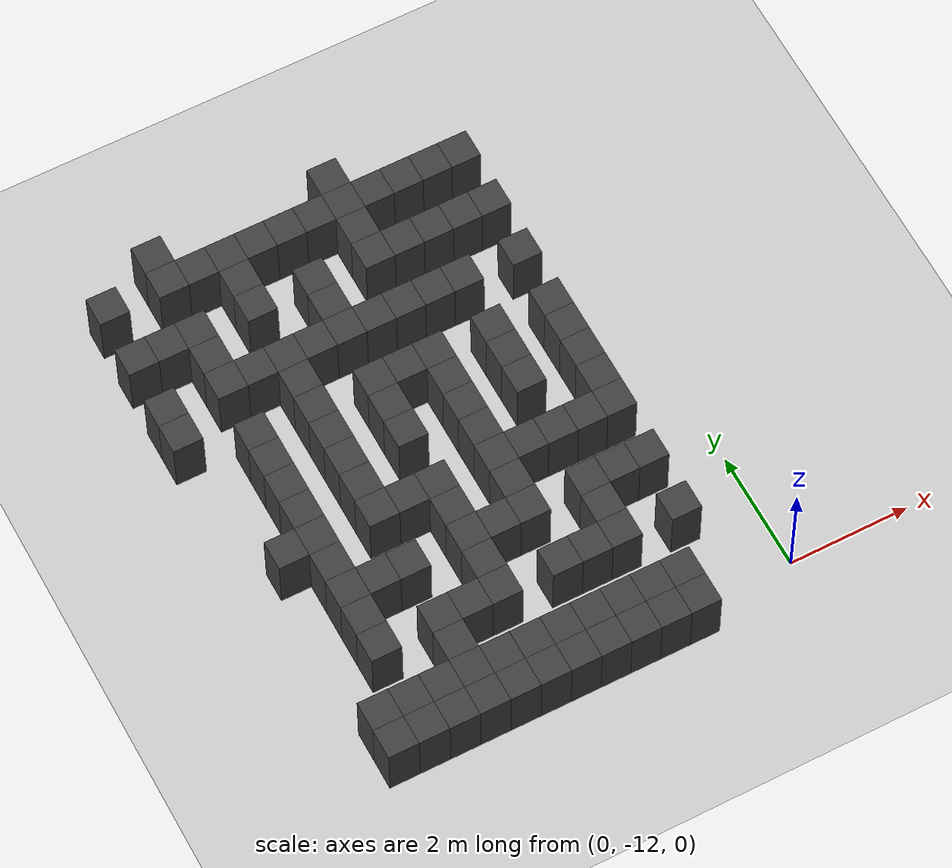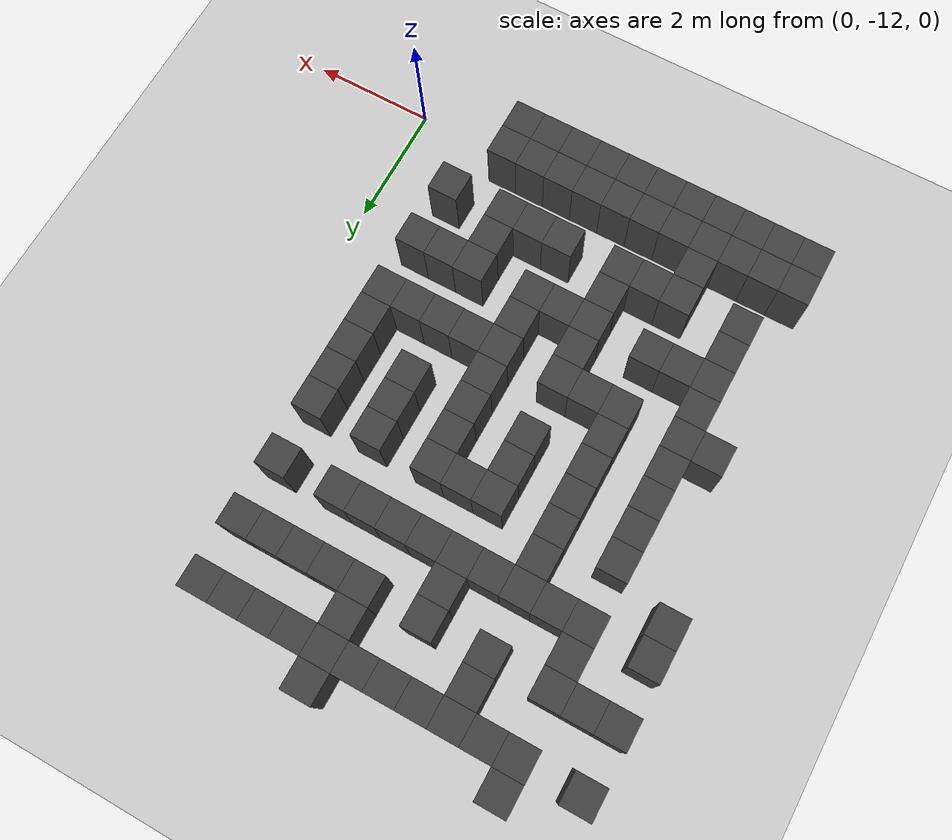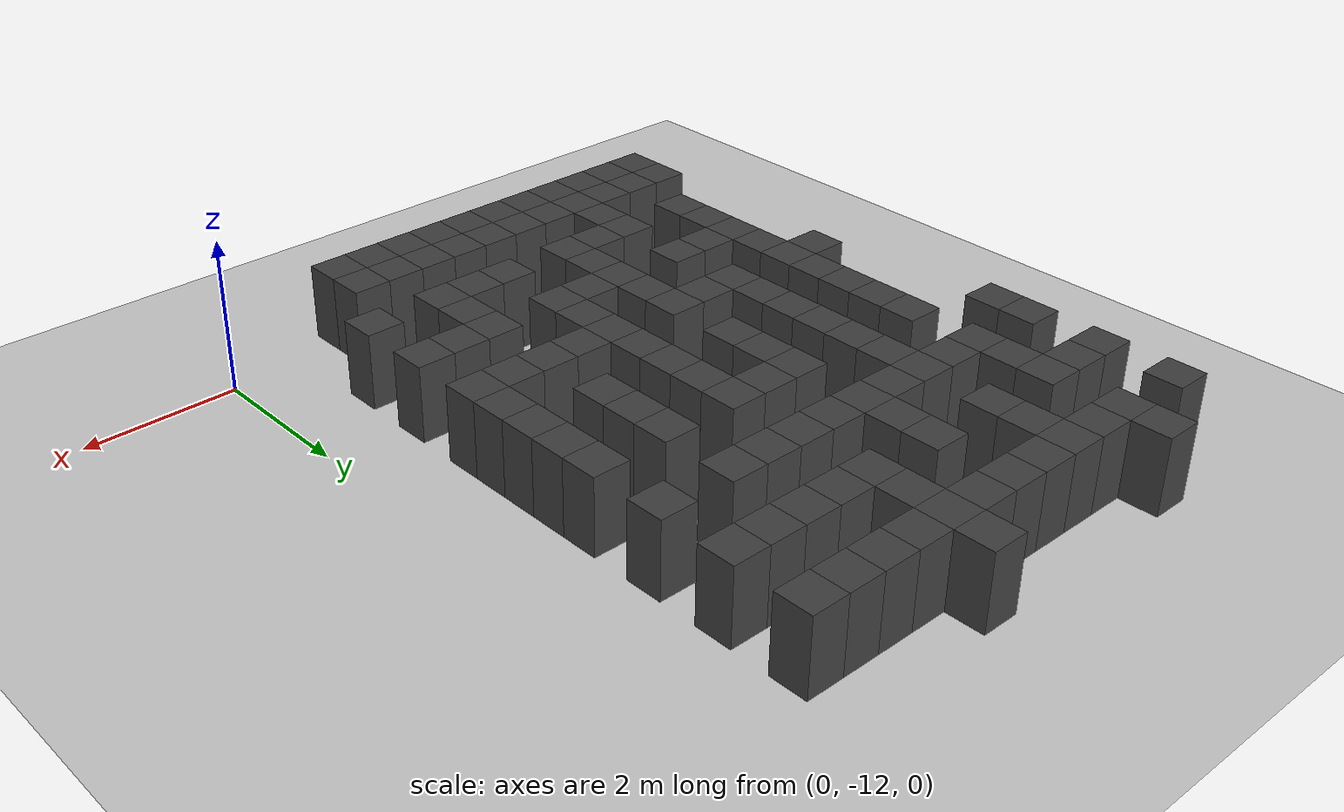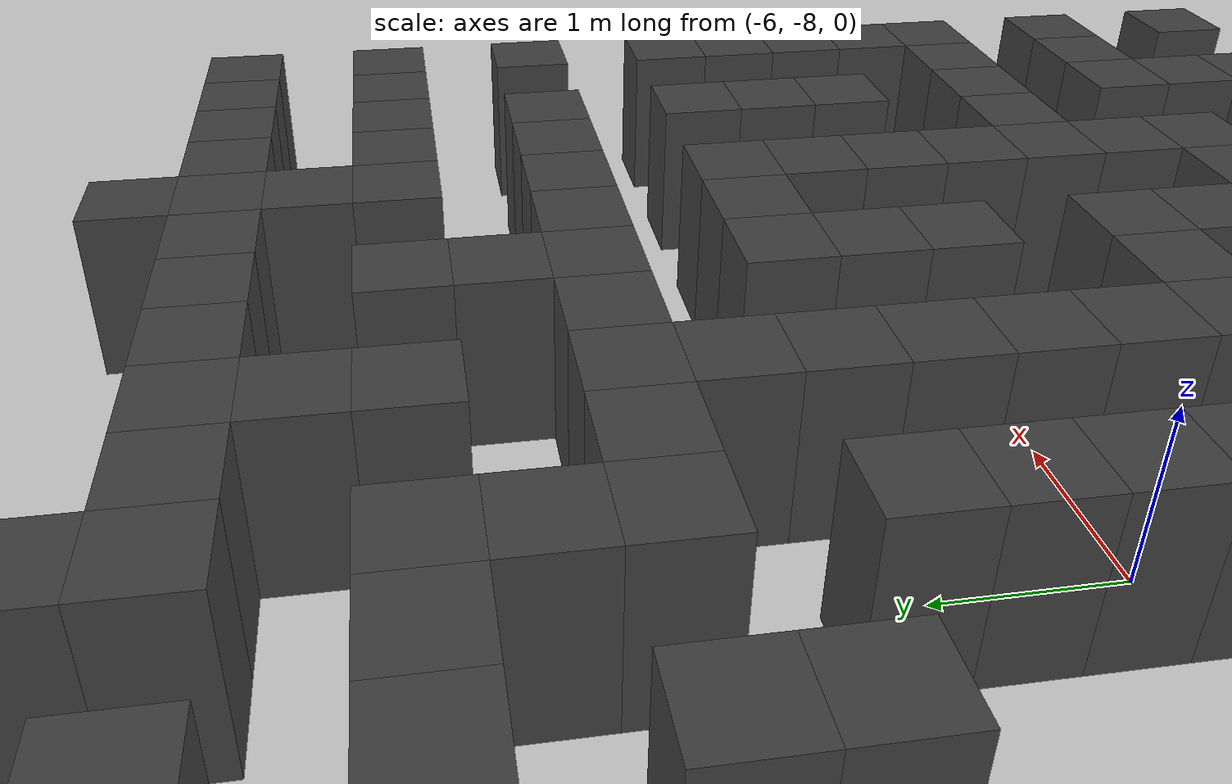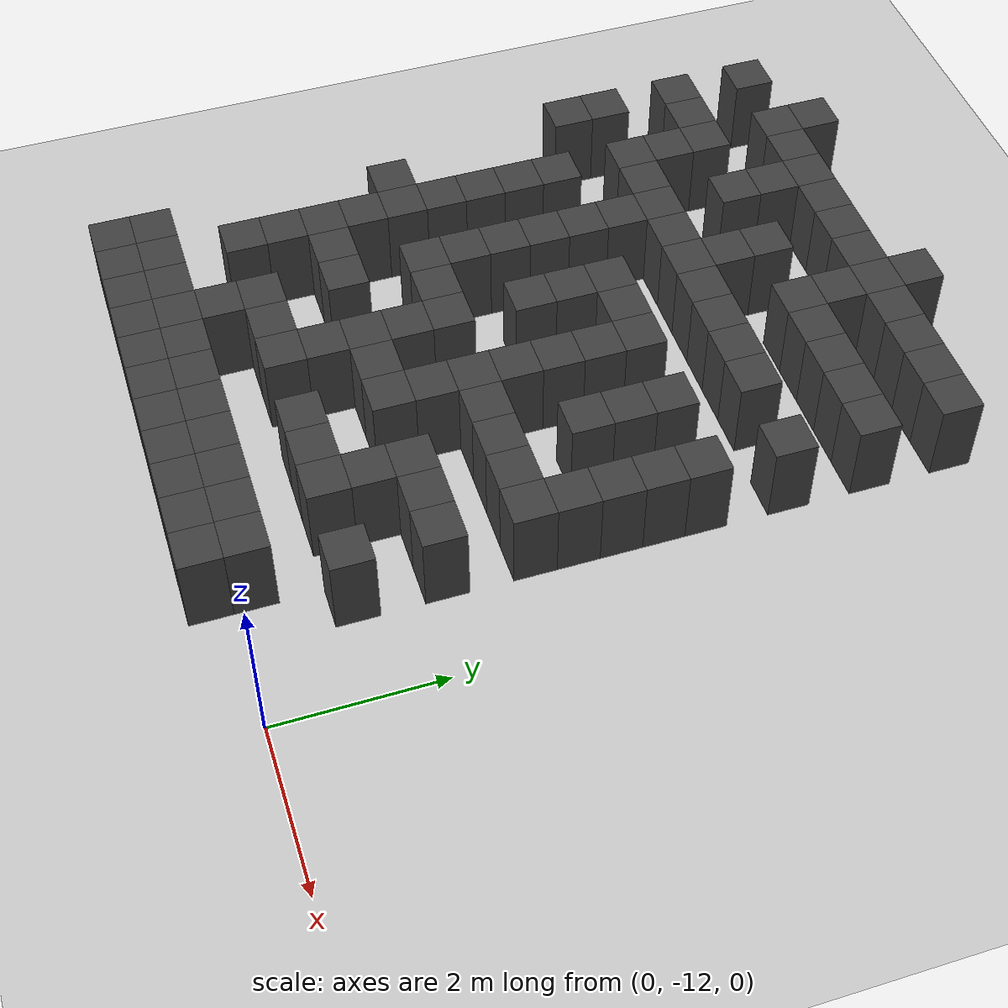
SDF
<sdf version="1.7">
 <world name="map_19217">
  <model name="ground_plane">
   <static>true</static>
   <link name="link">
    <collision name="collision">
     <geometry><plane><normal>0 0 1</normal><size>200 200</size></plane></geometry>
    </collision>
    <visual name="visual">
     <geometry><plane><normal>0 0 1</normal><size>200 200</size></plane></geometry>
     <material><ambient>0.8 0.8 0.8 1</ambient><diffuse>0.8 0.8 0.8 1</diffuse></material>
    </visual>
   </link>
  </model>
  <model name="maze_environment">
   <static>true</static>
   <link name="wall_811">
    <pose>-6.250 -3.250 0.500 0 0 0</pose>
    <collision name="col"><geometry><box><size>0.5 0.5 1.0</size></box></geometry></collision>
    <visual name="vis">
     <geometry><box><size>0.5 0.5 1.0</size></box></geometry>
     <material><ambient>0.15 0.15 0.15 1</ambient><diffuse>0.25 0.25 0.25 1</diffuse></material>
    </visual>
   </link>
   <link name="wall_812">
    <pose>-3.250 -3.250 0.500 0 0 0</pose>
    <collision name="col"><geometry><box><size>0.5 0.5 1.0</size></box></geometry></collision>
    <visual name="vis">
     <geometry><box><size>0.5 0.5 1.0</size></box></geometry>
     <material><ambient>0.15 0.15 0.15 1</ambient><diffuse>0.25 0.25 0.25 1</diffuse></material>
    </visual>
   </link>
   <link name="wall_827">
    <pose>-7.250 -3.750 0.500 0 0 0</pose>
    <collision name="col"><geometry><box><size>0.5 0.5 1.0</size></box></geometry></collision>
    <visual name="vis">
     <geometry><box><size>0.5 0.5 1.0</size></box></geometry>
     <material><ambient>0.15 0.15 0.15 1</ambient><diffuse>0.25 0.25 0.25 1</diffuse></material>
    </visual>
   </link>
   <link name="wall_828">
    <pose>-6.250 -3.750 0.500 0 0 0</pose>
    <collision name="col"><geometry><box><size>0.5 0.5 1.0</size></box></geometry></collision>
    <visual name="vis">
     <geometry><box><size>0.5 0.5 1.0</size></box></geometry>
     <material><ambient>0.15 0.15 0.15 1</ambient><diffuse>0.25 0.25 0.25 1</diffuse></material>
    </visual>
   </link>
   <link name="wall_829">
    <pose>-5.750 -3.750 0.500 0 0 0</pose>
    <collision name="col"><geometry><box><size>0.5 0.5 1.0</size></box></geometry></collision>
    <visual name="vis">
     <geometry><box><size>0.5 0.5 1.0</size></box></geometry>
     <material><ambient>0.15 0.15 0.15 1</ambient><diffuse>0.25 0.25 0.25 1</diffuse></material>
    </visual>
   </link>
   <link name="wall_830">
    <pose>-5.250 -3.750 0.500 0 0 0</pose>
    <collision name="col"><geometry><box><size>0.5 0.5 1.0</size></box></geometry></collision>
    <visual name="vis">
     <geometry><box><size>0.5 0.5 1.0</size></box></geometry>
     <material><ambient>0.15 0.15 0.15 1</ambient><diffuse>0.25 0.25 0.25 1</diffuse></material>
    </visual>
   </link>
   <link name="wall_831">
    <pose>-4.750 -3.750 0.500 0 0 0</pose>
    <collision name="col"><geometry><box><size>0.5 0.5 1.0</size></box></geometry></collision>
    <visual name="vis">
     <geometry><box><size>0.5 0.5 1.0</size></box></geometry>
     <material><ambient>0.15 0.15 0.15 1</ambient><diffuse>0.25 0.25 0.25 1</diffuse></material>
    </visual>
   </link>
   <link name="wall_832">
    <pose>-4.250 -3.750 0.500 0 0 0</pose>
    <collision name="col"><geometry><box><size>0.5 0.5 1.0</size></box></geometry></collision>
    <visual name="vis">
     <geometry><box><size>0.5 0.5 1.0</size></box></geometry>
     <material><ambient>0.15 0.15 0.15 1</ambient><diffuse>0.25 0.25 0.25 1</diffuse></material>
    </visual>
   </link>
   <link name="wall_833">
    <pose>-3.750 -3.750 0.500 0 0 0</pose>
    <collision name="col"><geometry><box><size>0.5 0.5 1.0</size></box></geometry></collision>
    <visual name="vis">
     <geometry><box><size>0.5 0.5 1.0</size></box></geometry>
     <material><ambient>0.15 0.15 0.15 1</ambient><diffuse>0.25 0.25 0.25 1</diffuse></material>
    </visual>
   </link>
   <link name="wall_834">
    <pose>-3.250 -3.750 0.500 0 0 0</pose>
    <collision name="col"><geometry><box><size>0.5 0.5 1.0</size></box></geometry></collision>
    <visual name="vis">
     <geometry><box><size>0.5 0.5 1.0</size></box></geometry>
     <material><ambient>0.15 0.15 0.15 1</ambient><diffuse>0.25 0.25 0.25 1</diffuse></material>
    </visual>
   </link>
   <link name="wall_835">
    <pose>-2.750 -3.750 0.500 0 0 0</pose>
    <collision name="col"><geometry><box><size>0.5 0.5 1.0</size></box></geometry></collision>
    <visual name="vis">
     <geometry><box><size>0.5 0.5 1.0</size></box></geometry>
     <material><ambient>0.15 0.15 0.15 1</ambient><diffuse>0.25 0.25 0.25 1</diffuse></material>
    </visual>
   </link>
   <link name="wall_836">
    <pose>-2.250 -3.750 0.500 0 0 0</pose>
    <collision name="col"><geometry><box><size>0.5 0.5 1.0</size></box></geometry></collision>
    <visual name="vis">
     <geometry><box><size>0.5 0.5 1.0</size></box></geometry>
     <material><ambient>0.15 0.15 0.15 1</ambient><diffuse>0.25 0.25 0.25 1</diffuse></material>
    </visual>
   </link>
   <link name="wall_837">
    <pose>-1.750 -3.750 0.500 0 0 0</pose>
    <collision name="col"><geometry><box><size>0.5 0.5 1.0</size></box></geometry></collision>
    <visual name="vis">
     <geometry><box><size>0.5 0.5 1.0</size></box></geometry>
     <material><ambient>0.15 0.15 0.15 1</ambient><diffuse>0.25 0.25 0.25 1</diffuse></material>
    </visual>
   </link>
   <link name="wall_838">
    <pose>-1.250 -3.750 0.500 0 0 0</pose>
    <collision name="col"><geometry><box><size>0.5 0.5 1.0</size></box></geometry></collision>
    <visual name="vis">
     <geometry><box><size>0.5 0.5 1.0</size></box></geometry>
     <material><ambient>0.15 0.15 0.15 1</ambient><diffuse>0.25 0.25 0.25 1</diffuse></material>
    </visual>
   </link>
   <link name="wall_861">
    <pose>-5.250 -4.250 0.500 0 0 0</pose>
    <collision name="col"><geometry><box><size>0.5 0.5 1.0</size></box></geometry></collision>
    <visual name="vis">
     <geometry><box><size>0.5 0.5 1.0</size></box></geometry>
     <material><ambient>0.15 0.15 0.15 1</ambient><diffuse>0.25 0.25 0.25 1</diffuse></material>
    </visual>
   </link>
   <link name="wall_862">
    <pose>-3.250 -4.250 0.500 0 0 0</pose>
    <collision name="col"><geometry><box><size>0.5 0.5 1.0</size></box></geometry></collision>
    <visual name="vis">
     <geometry><box><size>0.5 0.5 1.0</size></box></geometry>
     <material><ambient>0.15 0.15 0.15 1</ambient><diffuse>0.25 0.25 0.25 1</diffuse></material>
    </visual>
   </link>
   <link name="wall_878">
    <pose>-7.250 -4.750 0.500 0 0 0</pose>
    <collision name="col"><geometry><box><size>0.5 0.5 1.0</size></box></geometry></collision>
    <visual name="vis">
     <geometry><box><size>0.5 0.5 1.0</size></box></geometry>
     <material><ambient>0.15 0.15 0.15 1</ambient><diffuse>0.25 0.25 0.25 1</diffuse></material>
    </visual>
   </link>
   <link name="wall_879">
    <pose>-6.750 -4.750 0.500 0 0 0</pose>
    <collision name="col"><geometry><box><size>0.5 0.5 1.0</size></box></geometry></collision>
    <visual name="vis">
     <geometry><box><size>0.5 0.5 1.0</size></box></geometry>
     <material><ambient>0.15 0.15 0.15 1</ambient><diffuse>0.25 0.25 0.25 1</diffuse></material>
    </visual>
   </link>
   <link name="wall_880">
    <pose>-6.250 -4.750 0.500 0 0 0</pose>
    <collision name="col"><geometry><box><size>0.5 0.5 1.0</size></box></geometry></collision>
    <visual name="vis">
     <geometry><box><size>0.5 0.5 1.0</size></box></geometry>
     <material><ambient>0.15 0.15 0.15 1</ambient><diffuse>0.25 0.25 0.25 1</diffuse></material>
    </visual>
   </link>
   <link name="wall_881">
    <pose>-5.250 -4.750 0.500 0 0 0</pose>
    <collision name="col"><geometry><box><size>0.5 0.5 1.0</size></box></geometry></collision>
    <visual name="vis">
     <geometry><box><size>0.5 0.5 1.0</size></box></geometry>
     <material><ambient>0.15 0.15 0.15 1</ambient><diffuse>0.25 0.25 0.25 1</diffuse></material>
    </visual>
   </link>
   <link name="wall_882">
    <pose>-4.250 -4.750 0.500 0 0 0</pose>
    <collision name="col"><geometry><box><size>0.5 0.5 1.0</size></box></geometry></collision>
    <visual name="vis">
     <geometry><box><size>0.5 0.5 1.0</size></box></geometry>
     <material><ambient>0.15 0.15 0.15 1</ambient><diffuse>0.25 0.25 0.25 1</diffuse></material>
    </visual>
   </link>
   <link name="wall_883">
    <pose>-3.250 -4.750 0.500 0 0 0</pose>
    <collision name="col"><geometry><box><size>0.5 0.5 1.0</size></box></geometry></collision>
    <visual name="vis">
     <geometry><box><size>0.5 0.5 1.0</size></box></geometry>
     <material><ambient>0.15 0.15 0.15 1</ambient><diffuse>0.25 0.25 0.25 1</diffuse></material>
    </visual>
   </link>
   <link name="wall_884">
    <pose>-2.750 -4.750 0.500 0 0 0</pose>
    <collision name="col"><geometry><box><size>0.5 0.5 1.0</size></box></geometry></collision>
    <visual name="vis">
     <geometry><box><size>0.5 0.5 1.0</size></box></geometry>
     <material><ambient>0.15 0.15 0.15 1</ambient><diffuse>0.25 0.25 0.25 1</diffuse></material>
    </visual>
   </link>
   <link name="wall_885">
    <pose>-2.250 -4.750 0.500 0 0 0</pose>
    <collision name="col"><geometry><box><size>0.5 0.5 1.0</size></box></geometry></collision>
    <visual name="vis">
     <geometry><box><size>0.5 0.5 1.0</size></box></geometry>
     <material><ambient>0.15 0.15 0.15 1</ambient><diffuse>0.25 0.25 0.25 1</diffuse></material>
    </visual>
   </link>
   <link name="wall_886">
    <pose>-1.750 -4.750 0.500 0 0 0</pose>
    <collision name="col"><geometry><box><size>0.5 0.5 1.0</size></box></geometry></collision>
    <visual name="vis">
     <geometry><box><size>0.5 0.5 1.0</size></box></geometry>
     <material><ambient>0.15 0.15 0.15 1</ambient><diffuse>0.25 0.25 0.25 1</diffuse></material>
    </visual>
   </link>
   <link name="wall_887">
    <pose>-1.250 -4.750 0.500 0 0 0</pose>
    <collision name="col"><geometry><box><size>0.5 0.5 1.0</size></box></geometry></collision>
    <visual name="vis">
     <geometry><box><size>0.5 0.5 1.0</size></box></geometry>
     <material><ambient>0.15 0.15 0.15 1</ambient><diffuse>0.25 0.25 0.25 1</diffuse></material>
    </visual>
   </link>
   <link name="wall_913">
    <pose>-6.250 -5.250 0.500 0 0 0</pose>
    <collision name="col"><geometry><box><size>0.5 0.5 1.0</size></box></geometry></collision>
    <visual name="vis">
     <geometry><box><size>0.5 0.5 1.0</size></box></geometry>
     <material><ambient>0.15 0.15 0.15 1</ambient><diffuse>0.25 0.25 0.25 1</diffuse></material>
    </visual>
   </link>
   <link name="wall_914">
    <pose>-4.250 -5.250 0.500 0 0 0</pose>
    <collision name="col"><geometry><box><size>0.5 0.5 1.0</size></box></geometry></collision>
    <visual name="vis">
     <geometry><box><size>0.5 0.5 1.0</size></box></geometry>
     <material><ambient>0.15 0.15 0.15 1</ambient><diffuse>0.25 0.25 0.25 1</diffuse></material>
    </visual>
   </link>
   <link name="wall_929">
    <pose>-7.250 -5.750 0.500 0 0 0</pose>
    <collision name="col"><geometry><box><size>0.5 0.5 1.0</size></box></geometry></collision>
    <visual name="vis">
     <geometry><box><size>0.5 0.5 1.0</size></box></geometry>
     <material><ambient>0.15 0.15 0.15 1</ambient><diffuse>0.25 0.25 0.25 1</diffuse></material>
    </visual>
   </link>
   <link name="wall_930">
    <pose>-6.250 -5.750 0.500 0 0 0</pose>
    <collision name="col"><geometry><box><size>0.5 0.5 1.0</size></box></geometry></collision>
    <visual name="vis">
     <geometry><box><size>0.5 0.5 1.0</size></box></geometry>
     <material><ambient>0.15 0.15 0.15 1</ambient><diffuse>0.25 0.25 0.25 1</diffuse></material>
    </visual>
   </link>
   <link name="wall_931">
    <pose>-5.750 -5.750 0.500 0 0 0</pose>
    <collision name="col"><geometry><box><size>0.5 0.5 1.0</size></box></geometry></collision>
    <visual name="vis">
     <geometry><box><size>0.5 0.5 1.0</size></box></geometry>
     <material><ambient>0.15 0.15 0.15 1</ambient><diffuse>0.25 0.25 0.25 1</diffuse></material>
    </visual>
   </link>
   <link name="wall_932">
    <pose>-5.250 -5.750 0.500 0 0 0</pose>
    <collision name="col"><geometry><box><size>0.5 0.5 1.0</size></box></geometry></collision>
    <visual name="vis">
     <geometry><box><size>0.5 0.5 1.0</size></box></geometry>
     <material><ambient>0.15 0.15 0.15 1</ambient><diffuse>0.25 0.25 0.25 1</diffuse></material>
    </visual>
   </link>
   <link name="wall_933">
    <pose>-4.750 -5.750 0.500 0 0 0</pose>
    <collision name="col"><geometry><box><size>0.5 0.5 1.0</size></box></geometry></collision>
    <visual name="vis">
     <geometry><box><size>0.5 0.5 1.0</size></box></geometry>
     <material><ambient>0.15 0.15 0.15 1</ambient><diffuse>0.25 0.25 0.25 1</diffuse></material>
    </visual>
   </link>
   <link name="wall_934">
    <pose>-4.250 -5.750 0.500 0 0 0</pose>
    <collision name="col"><geometry><box><size>0.5 0.5 1.0</size></box></geometry></collision>
    <visual name="vis">
     <geometry><box><size>0.5 0.5 1.0</size></box></geometry>
     <material><ambient>0.15 0.15 0.15 1</ambient><diffuse>0.25 0.25 0.25 1</diffuse></material>
    </visual>
   </link>
   <link name="wall_935">
    <pose>-3.750 -5.750 0.500 0 0 0</pose>
    <collision name="col"><geometry><box><size>0.5 0.5 1.0</size></box></geometry></collision>
    <visual name="vis">
     <geometry><box><size>0.5 0.5 1.0</size></box></geometry>
     <material><ambient>0.15 0.15 0.15 1</ambient><diffuse>0.25 0.25 0.25 1</diffuse></material>
    </visual>
   </link>
   <link name="wall_936">
    <pose>-3.250 -5.750 0.500 0 0 0</pose>
    <collision name="col"><geometry><box><size>0.5 0.5 1.0</size></box></geometry></collision>
    <visual name="vis">
     <geometry><box><size>0.5 0.5 1.0</size></box></geometry>
     <material><ambient>0.15 0.15 0.15 1</ambient><diffuse>0.25 0.25 0.25 1</diffuse></material>
    </visual>
   </link>
   <link name="wall_937">
    <pose>-2.750 -5.750 0.500 0 0 0</pose>
    <collision name="col"><geometry><box><size>0.5 0.5 1.0</size></box></geometry></collision>
    <visual name="vis">
     <geometry><box><size>0.5 0.5 1.0</size></box></geometry>
     <material><ambient>0.15 0.15 0.15 1</ambient><diffuse>0.25 0.25 0.25 1</diffuse></material>
    </visual>
   </link>
   <link name="wall_938">
    <pose>-2.250 -5.750 0.500 0 0 0</pose>
    <collision name="col"><geometry><box><size>0.5 0.5 1.0</size></box></geometry></collision>
    <visual name="vis">
     <geometry><box><size>0.5 0.5 1.0</size></box></geometry>
     <material><ambient>0.15 0.15 0.15 1</ambient><diffuse>0.25 0.25 0.25 1</diffuse></material>
    </visual>
   </link>
   <link name="wall_939">
    <pose>-1.250 -5.750 0.500 0 0 0</pose>
    <collision name="col"><geometry><box><size>0.5 0.5 1.0</size></box></geometry></collision>
    <visual name="vis">
     <geometry><box><size>0.5 0.5 1.0</size></box></geometry>
     <material><ambient>0.15 0.15 0.15 1</ambient><diffuse>0.25 0.25 0.25 1</diffuse></material>
    </visual>
   </link>
   <link name="wall_964">
    <pose>-7.250 -6.250 0.500 0 0 0</pose>
    <collision name="col"><geometry><box><size>0.5 0.5 1.0</size></box></geometry></collision>
    <visual name="vis">
     <geometry><box><size>0.5 0.5 1.0</size></box></geometry>
     <material><ambient>0.15 0.15 0.15 1</ambient><diffuse>0.25 0.25 0.25 1</diffuse></material>
    </visual>
   </link>
   <link name="wall_965">
    <pose>-5.250 -6.250 0.500 0 0 0</pose>
    <collision name="col"><geometry><box><size>0.5 0.5 1.0</size></box></geometry></collision>
    <visual name="vis">
     <geometry><box><size>0.5 0.5 1.0</size></box></geometry>
     <material><ambient>0.15 0.15 0.15 1</ambient><diffuse>0.25 0.25 0.25 1</diffuse></material>
    </visual>
   </link>
   <link name="wall_980">
    <pose>-6.250 -6.750 0.500 0 0 0</pose>
    <collision name="col"><geometry><box><size>0.5 0.5 1.0</size></box></geometry></collision>
    <visual name="vis">
     <geometry><box><size>0.5 0.5 1.0</size></box></geometry>
     <material><ambient>0.15 0.15 0.15 1</ambient><diffuse>0.25 0.25 0.25 1</diffuse></material>
    </visual>
   </link>
   <link name="wall_981">
    <pose>-5.250 -6.750 0.500 0 0 0</pose>
    <collision name="col"><geometry><box><size>0.5 0.5 1.0</size></box></geometry></collision>
    <visual name="vis">
     <geometry><box><size>0.5 0.5 1.0</size></box></geometry>
     <material><ambient>0.15 0.15 0.15 1</ambient><diffuse>0.25 0.25 0.25 1</diffuse></material>
    </visual>
   </link>
   <link name="wall_982">
    <pose>-4.250 -6.750 0.500 0 0 0</pose>
    <collision name="col"><geometry><box><size>0.5 0.5 1.0</size></box></geometry></collision>
    <visual name="vis">
     <geometry><box><size>0.5 0.5 1.0</size></box></geometry>
     <material><ambient>0.15 0.15 0.15 1</ambient><diffuse>0.25 0.25 0.25 1</diffuse></material>
    </visual>
   </link>
   <link name="wall_983">
    <pose>-3.750 -6.750 0.500 0 0 0</pose>
    <collision name="col"><geometry><box><size>0.5 0.5 1.0</size></box></geometry></collision>
    <visual name="vis">
     <geometry><box><size>0.5 0.5 1.0</size></box></geometry>
     <material><ambient>0.15 0.15 0.15 1</ambient><diffuse>0.25 0.25 0.25 1</diffuse></material>
    </visual>
   </link>
   <link name="wall_984">
    <pose>-3.250 -6.750 0.500 0 0 0</pose>
    <collision name="col"><geometry><box><size>0.5 0.5 1.0</size></box></geometry></collision>
    <visual name="vis">
     <geometry><box><size>0.5 0.5 1.0</size></box></geometry>
     <material><ambient>0.15 0.15 0.15 1</ambient><diffuse>0.25 0.25 0.25 1</diffuse></material>
    </visual>
   </link>
   <link name="wall_985">
    <pose>-2.250 -6.750 0.500 0 0 0</pose>
    <collision name="col"><geometry><box><size>0.5 0.5 1.0</size></box></geometry></collision>
    <visual name="vis">
     <geometry><box><size>0.5 0.5 1.0</size></box></geometry>
     <material><ambient>0.15 0.15 0.15 1</ambient><diffuse>0.25 0.25 0.25 1</diffuse></material>
    </visual>
   </link>
   <link name="wall_986">
    <pose>-1.250 -6.750 0.500 0 0 0</pose>
    <collision name="col"><geometry><box><size>0.5 0.5 1.0</size></box></geometry></collision>
    <visual name="vis">
     <geometry><box><size>0.5 0.5 1.0</size></box></geometry>
     <material><ambient>0.15 0.15 0.15 1</ambient><diffuse>0.25 0.25 0.25 1</diffuse></material>
    </visual>
   </link>
   <link name="wall_1010">
    <pose>-6.250 -7.250 0.500 0 0 0</pose>
    <collision name="col"><geometry><box><size>0.5 0.5 1.0</size></box></geometry></collision>
    <visual name="vis">
     <geometry><box><size>0.5 0.5 1.0</size></box></geometry>
     <material><ambient>0.15 0.15 0.15 1</ambient><diffuse>0.25 0.25 0.25 1</diffuse></material>
    </visual>
   </link>
   <link name="wall_1011">
    <pose>-5.250 -7.250 0.500 0 0 0</pose>
    <collision name="col"><geometry><box><size>0.5 0.5 1.0</size></box></geometry></collision>
    <visual name="vis">
     <geometry><box><size>0.5 0.5 1.0</size></box></geometry>
     <material><ambient>0.15 0.15 0.15 1</ambient><diffuse>0.25 0.25 0.25 1</diffuse></material>
    </visual>
   </link>
   <link name="wall_1012">
    <pose>-4.250 -7.250 0.500 0 0 0</pose>
    <collision name="col"><geometry><box><size>0.5 0.5 1.0</size></box></geometry></collision>
    <visual name="vis">
     <geometry><box><size>0.5 0.5 1.0</size></box></geometry>
     <material><ambient>0.15 0.15 0.15 1</ambient><diffuse>0.25 0.25 0.25 1</diffuse></material>
    </visual>
   </link>
   <link name="wall_1013">
    <pose>-3.250 -7.250 0.500 0 0 0</pose>
    <collision name="col"><geometry><box><size>0.5 0.5 1.0</size></box></geometry></collision>
    <visual name="vis">
     <geometry><box><size>0.5 0.5 1.0</size></box></geometry>
     <material><ambient>0.15 0.15 0.15 1</ambient><diffuse>0.25 0.25 0.25 1</diffuse></material>
    </visual>
   </link>
   <link name="wall_1014">
    <pose>-2.250 -7.250 0.500 0 0 0</pose>
    <collision name="col"><geometry><box><size>0.5 0.5 1.0</size></box></geometry></collision>
    <visual name="vis">
     <geometry><box><size>0.5 0.5 1.0</size></box></geometry>
     <material><ambient>0.15 0.15 0.15 1</ambient><diffuse>0.25 0.25 0.25 1</diffuse></material>
    </visual>
   </link>
   <link name="wall_1015">
    <pose>-1.250 -7.250 0.500 0 0 0</pose>
    <collision name="col"><geometry><box><size>0.5 0.5 1.0</size></box></geometry></collision>
    <visual name="vis">
     <geometry><box><size>0.5 0.5 1.0</size></box></geometry>
     <material><ambient>0.15 0.15 0.15 1</ambient><diffuse>0.25 0.25 0.25 1</diffuse></material>
    </visual>
   </link>
   <link name="wall_1032">
    <pose>-6.250 -7.750 0.500 0 0 0</pose>
    <collision name="col"><geometry><box><size>0.5 0.5 1.0</size></box></geometry></collision>
    <visual name="vis">
     <geometry><box><size>0.5 0.5 1.0</size></box></geometry>
     <material><ambient>0.15 0.15 0.15 1</ambient><diffuse>0.25 0.25 0.25 1</diffuse></material>
    </visual>
   </link>
   <link name="wall_1033">
    <pose>-5.250 -7.750 0.500 0 0 0</pose>
    <collision name="col"><geometry><box><size>0.5 0.5 1.0</size></box></geometry></collision>
    <visual name="vis">
     <geometry><box><size>0.5 0.5 1.0</size></box></geometry>
     <material><ambient>0.15 0.15 0.15 1</ambient><diffuse>0.25 0.25 0.25 1</diffuse></material>
    </visual>
   </link>
   <link name="wall_1034">
    <pose>-4.250 -7.750 0.500 0 0 0</pose>
    <collision name="col"><geometry><box><size>0.5 0.5 1.0</size></box></geometry></collision>
    <visual name="vis">
     <geometry><box><size>0.5 0.5 1.0</size></box></geometry>
     <material><ambient>0.15 0.15 0.15 1</ambient><diffuse>0.25 0.25 0.25 1</diffuse></material>
    </visual>
   </link>
   <link name="wall_1035">
    <pose>-3.250 -7.750 0.500 0 0 0</pose>
    <collision name="col"><geometry><box><size>0.5 0.5 1.0</size></box></geometry></collision>
    <visual name="vis">
     <geometry><box><size>0.5 0.5 1.0</size></box></geometry>
     <material><ambient>0.15 0.15 0.15 1</ambient><diffuse>0.25 0.25 0.25 1</diffuse></material>
    </visual>
   </link>
   <link name="wall_1036">
    <pose>-2.250 -7.750 0.500 0 0 0</pose>
    <collision name="col"><geometry><box><size>0.5 0.5 1.0</size></box></geometry></collision>
    <visual name="vis">
     <geometry><box><size>0.5 0.5 1.0</size></box></geometry>
     <material><ambient>0.15 0.15 0.15 1</ambient><diffuse>0.25 0.25 0.25 1</diffuse></material>
    </visual>
   </link>
   <link name="wall_1037">
    <pose>-1.250 -7.750 0.500 0 0 0</pose>
    <collision name="col"><geometry><box><size>0.5 0.5 1.0</size></box></geometry></collision>
    <visual name="vis">
     <geometry><box><size>0.5 0.5 1.0</size></box></geometry>
     <material><ambient>0.15 0.15 0.15 1</ambient><diffuse>0.25 0.25 0.25 1</diffuse></material>
    </visual>
   </link>
   <link name="wall_1062">
    <pose>-6.250 -8.250 0.500 0 0 0</pose>
    <collision name="col"><geometry><box><size>0.5 0.5 1.0</size></box></geometry></collision>
    <visual name="vis">
     <geometry><box><size>0.5 0.5 1.0</size></box></geometry>
     <material><ambient>0.15 0.15 0.15 1</ambient><diffuse>0.25 0.25 0.25 1</diffuse></material>
    </visual>
   </link>
   <link name="wall_1063">
    <pose>-5.250 -8.250 0.500 0 0 0</pose>
    <collision name="col"><geometry><box><size>0.5 0.5 1.0</size></box></geometry></collision>
    <visual name="vis">
     <geometry><box><size>0.5 0.5 1.0</size></box></geometry>
     <material><ambient>0.15 0.15 0.15 1</ambient><diffuse>0.25 0.25 0.25 1</diffuse></material>
    </visual>
   </link>
   <link name="wall_1064">
    <pose>-3.250 -8.250 0.500 0 0 0</pose>
    <collision name="col"><geometry><box><size>0.5 0.5 1.0</size></box></geometry></collision>
    <visual name="vis">
     <geometry><box><size>0.5 0.5 1.0</size></box></geometry>
     <material><ambient>0.15 0.15 0.15 1</ambient><diffuse>0.25 0.25 0.25 1</diffuse></material>
    </visual>
   </link>
   <link name="wall_1065">
    <pose>-1.250 -8.250 0.500 0 0 0</pose>
    <collision name="col"><geometry><box><size>0.5 0.5 1.0</size></box></geometry></collision>
    <visual name="vis">
     <geometry><box><size>0.5 0.5 1.0</size></box></geometry>
     <material><ambient>0.15 0.15 0.15 1</ambient><diffuse>0.25 0.25 0.25 1</diffuse></material>
    </visual>
   </link>
   <link name="wall_1082">
    <pose>-6.750 -8.750 0.500 0 0 0</pose>
    <collision name="col"><geometry><box><size>0.5 0.5 1.0</size></box></geometry></collision>
    <visual name="vis">
     <geometry><box><size>0.5 0.5 1.0</size></box></geometry>
     <material><ambient>0.15 0.15 0.15 1</ambient><diffuse>0.25 0.25 0.25 1</diffuse></material>
    </visual>
   </link>
   <link name="wall_1083">
    <pose>-6.250 -8.750 0.500 0 0 0</pose>
    <collision name="col"><geometry><box><size>0.5 0.5 1.0</size></box></geometry></collision>
    <visual name="vis">
     <geometry><box><size>0.5 0.5 1.0</size></box></geometry>
     <material><ambient>0.15 0.15 0.15 1</ambient><diffuse>0.25 0.25 0.25 1</diffuse></material>
    </visual>
   </link>
   <link name="wall_1084">
    <pose>-5.250 -8.750 0.500 0 0 0</pose>
    <collision name="col"><geometry><box><size>0.5 0.5 1.0</size></box></geometry></collision>
    <visual name="vis">
     <geometry><box><size>0.5 0.5 1.0</size></box></geometry>
     <material><ambient>0.15 0.15 0.15 1</ambient><diffuse>0.25 0.25 0.25 1</diffuse></material>
    </visual>
   </link>
   <link name="wall_1085">
    <pose>-4.750 -8.750 0.500 0 0 0</pose>
    <collision name="col"><geometry><box><size>0.5 0.5 1.0</size></box></geometry></collision>
    <visual name="vis">
     <geometry><box><size>0.5 0.5 1.0</size></box></geometry>
     <material><ambient>0.15 0.15 0.15 1</ambient><diffuse>0.25 0.25 0.25 1</diffuse></material>
    </visual>
   </link>
   <link name="wall_1086">
    <pose>-4.250 -8.750 0.500 0 0 0</pose>
    <collision name="col"><geometry><box><size>0.5 0.5 1.0</size></box></geometry></collision>
    <visual name="vis">
     <geometry><box><size>0.5 0.5 1.0</size></box></geometry>
     <material><ambient>0.15 0.15 0.15 1</ambient><diffuse>0.25 0.25 0.25 1</diffuse></material>
    </visual>
   </link>
   <link name="wall_1087">
    <pose>-3.250 -8.750 0.500 0 0 0</pose>
    <collision name="col"><geometry><box><size>0.5 0.5 1.0</size></box></geometry></collision>
    <visual name="vis">
     <geometry><box><size>0.5 0.5 1.0</size></box></geometry>
     <material><ambient>0.15 0.15 0.15 1</ambient><diffuse>0.25 0.25 0.25 1</diffuse></material>
    </visual>
   </link>
   <link name="wall_1088">
    <pose>-2.750 -8.750 0.500 0 0 0</pose>
    <collision name="col"><geometry><box><size>0.5 0.5 1.0</size></box></geometry></collision>
    <visual name="vis">
     <geometry><box><size>0.5 0.5 1.0</size></box></geometry>
     <material><ambient>0.15 0.15 0.15 1</ambient><diffuse>0.25 0.25 0.25 1</diffuse></material>
    </visual>
   </link>
   <link name="wall_1089">
    <pose>-2.250 -8.750 0.500 0 0 0</pose>
    <collision name="col"><geometry><box><size>0.5 0.5 1.0</size></box></geometry></collision>
    <visual name="vis">
     <geometry><box><size>0.5 0.5 1.0</size></box></geometry>
     <material><ambient>0.15 0.15 0.15 1</ambient><diffuse>0.25 0.25 0.25 1</diffuse></material>
    </visual>
   </link>
   <link name="wall_1090">
    <pose>-1.750 -8.750 0.500 0 0 0</pose>
    <collision name="col"><geometry><box><size>0.5 0.5 1.0</size></box></geometry></collision>
    <visual name="vis">
     <geometry><box><size>0.5 0.5 1.0</size></box></geometry>
     <material><ambient>0.15 0.15 0.15 1</ambient><diffuse>0.25 0.25 0.25 1</diffuse></material>
    </visual>
   </link>
   <link name="wall_1091">
    <pose>-1.250 -8.750 0.500 0 0 0</pose>
    <collision name="col"><geometry><box><size>0.5 0.5 1.0</size></box></geometry></collision>
    <visual name="vis">
     <geometry><box><size>0.5 0.5 1.0</size></box></geometry>
     <material><ambient>0.15 0.15 0.15 1</ambient><diffuse>0.25 0.25 0.25 1</diffuse></material>
    </visual>
   </link>
   <link name="wall_1115">
    <pose>-6.250 -9.250 0.500 0 0 0</pose>
    <collision name="col"><geometry><box><size>0.5 0.5 1.0</size></box></geometry></collision>
    <visual name="vis">
     <geometry><box><size>0.5 0.5 1.0</size></box></geometry>
     <material><ambient>0.15 0.15 0.15 1</ambient><diffuse>0.25 0.25 0.25 1</diffuse></material>
    </visual>
   </link>
   <link name="wall_1116">
    <pose>-4.250 -9.250 0.500 0 0 0</pose>
    <collision name="col"><geometry><box><size>0.5 0.5 1.0</size></box></geometry></collision>
    <visual name="vis">
     <geometry><box><size>0.5 0.5 1.0</size></box></geometry>
     <material><ambient>0.15 0.15 0.15 1</ambient><diffuse>0.25 0.25 0.25 1</diffuse></material>
    </visual>
   </link>
   <link name="wall_1117">
    <pose>-3.250 -9.250 0.500 0 0 0</pose>
    <collision name="col"><geometry><box><size>0.5 0.5 1.0</size></box></geometry></collision>
    <visual name="vis">
     <geometry><box><size>0.5 0.5 1.0</size></box></geometry>
     <material><ambient>0.15 0.15 0.15 1</ambient><diffuse>0.25 0.25 0.25 1</diffuse></material>
    </visual>
   </link>
   <link name="wall_1135">
    <pose>-6.250 -9.750 0.500 0 0 0</pose>
    <collision name="col"><geometry><box><size>0.5 0.5 1.0</size></box></geometry></collision>
    <visual name="vis">
     <geometry><box><size>0.5 0.5 1.0</size></box></geometry>
     <material><ambient>0.15 0.15 0.15 1</ambient><diffuse>0.25 0.25 0.25 1</diffuse></material>
    </visual>
   </link>
   <link name="wall_1136">
    <pose>-5.750 -9.750 0.500 0 0 0</pose>
    <collision name="col"><geometry><box><size>0.5 0.5 1.0</size></box></geometry></collision>
    <visual name="vis">
     <geometry><box><size>0.5 0.5 1.0</size></box></geometry>
     <material><ambient>0.15 0.15 0.15 1</ambient><diffuse>0.25 0.25 0.25 1</diffuse></material>
    </visual>
   </link>
   <link name="wall_1137">
    <pose>-5.250 -9.750 0.500 0 0 0</pose>
    <collision name="col"><geometry><box><size>0.5 0.5 1.0</size></box></geometry></collision>
    <visual name="vis">
     <geometry><box><size>0.5 0.5 1.0</size></box></geometry>
     <material><ambient>0.15 0.15 0.15 1</ambient><diffuse>0.25 0.25 0.25 1</diffuse></material>
    </visual>
   </link>
   <link name="wall_1138">
    <pose>-4.250 -9.750 0.500 0 0 0</pose>
    <collision name="col"><geometry><box><size>0.5 0.5 1.0</size></box></geometry></collision>
    <visual name="vis">
     <geometry><box><size>0.5 0.5 1.0</size></box></geometry>
     <material><ambient>0.15 0.15 0.15 1</ambient><diffuse>0.25 0.25 0.25 1</diffuse></material>
    </visual>
   </link>
   <link name="wall_1139">
    <pose>-3.750 -9.750 0.500 0 0 0</pose>
    <collision name="col"><geometry><box><size>0.5 0.5 1.0</size></box></geometry></collision>
    <visual name="vis">
     <geometry><box><size>0.5 0.5 1.0</size></box></geometry>
     <material><ambient>0.15 0.15 0.15 1</ambient><diffuse>0.25 0.25 0.25 1</diffuse></material>
    </visual>
   </link>
   <link name="wall_1140">
    <pose>-3.250 -9.750 0.500 0 0 0</pose>
    <collision name="col"><geometry><box><size>0.5 0.5 1.0</size></box></geometry></collision>
    <visual name="vis">
     <geometry><box><size>0.5 0.5 1.0</size></box></geometry>
     <material><ambient>0.15 0.15 0.15 1</ambient><diffuse>0.25 0.25 0.25 1</diffuse></material>
    </visual>
   </link>
   <link name="wall_1141">
    <pose>-2.250 -9.750 0.500 0 0 0</pose>
    <collision name="col"><geometry><box><size>0.5 0.5 1.0</size></box></geometry></collision>
    <visual name="vis">
     <geometry><box><size>0.5 0.5 1.0</size></box></geometry>
     <material><ambient>0.15 0.15 0.15 1</ambient><diffuse>0.25 0.25 0.25 1</diffuse></material>
    </visual>
   </link>
   <link name="wall_1142">
    <pose>-1.750 -9.750 0.500 0 0 0</pose>
    <collision name="col"><geometry><box><size>0.5 0.5 1.0</size></box></geometry></collision>
    <visual name="vis">
     <geometry><box><size>0.5 0.5 1.0</size></box></geometry>
     <material><ambient>0.15 0.15 0.15 1</ambient><diffuse>0.25 0.25 0.25 1</diffuse></material>
    </visual>
   </link>
   <link name="wall_1143">
    <pose>-1.250 -9.750 0.500 0 0 0</pose>
    <collision name="col"><geometry><box><size>0.5 0.5 1.0</size></box></geometry></collision>
    <visual name="vis">
     <geometry><box><size>0.5 0.5 1.0</size></box></geometry>
     <material><ambient>0.15 0.15 0.15 1</ambient><diffuse>0.25 0.25 0.25 1</diffuse></material>
    </visual>
   </link>
   <link name="wall_1166">
    <pose>-6.250 -10.250 0.500 0 0 0</pose>
    <collision name="col"><geometry><box><size>0.5 0.5 1.0</size></box></geometry></collision>
    <visual name="vis">
     <geometry><box><size>0.5 0.5 1.0</size></box></geometry>
     <material><ambient>0.15 0.15 0.15 1</ambient><diffuse>0.25 0.25 0.25 1</diffuse></material>
    </visual>
   </link>
   <link name="wall_1167">
    <pose>-4.250 -10.250 0.500 0 0 0</pose>
    <collision name="col"><geometry><box><size>0.5 0.5 1.0</size></box></geometry></collision>
    <visual name="vis">
     <geometry><box><size>0.5 0.5 1.0</size></box></geometry>
     <material><ambient>0.15 0.15 0.15 1</ambient><diffuse>0.25 0.25 0.25 1</diffuse></material>
    </visual>
   </link>
   <link name="wall_1168">
    <pose>-2.250 -10.250 0.500 0 0 0</pose>
    <collision name="col"><geometry><box><size>0.5 0.5 1.0</size></box></geometry></collision>
    <visual name="vis">
     <geometry><box><size>0.5 0.5 1.0</size></box></geometry>
     <material><ambient>0.15 0.15 0.15 1</ambient><diffuse>0.25 0.25 0.25 1</diffuse></material>
    </visual>
   </link>
   <link name="wall_1188">
    <pose>-6.250 -10.750 0.500 0 0 0</pose>
    <collision name="col"><geometry><box><size>0.5 0.5 1.0</size></box></geometry></collision>
    <visual name="vis">
     <geometry><box><size>0.5 0.5 1.0</size></box></geometry>
     <material><ambient>0.15 0.15 0.15 1</ambient><diffuse>0.25 0.25 0.25 1</diffuse></material>
    </visual>
   </link>
   <link name="wall_1189">
    <pose>-5.250 -10.750 0.500 0 0 0</pose>
    <collision name="col"><geometry><box><size>0.5 0.5 1.0</size></box></geometry></collision>
    <visual name="vis">
     <geometry><box><size>0.5 0.5 1.0</size></box></geometry>
     <material><ambient>0.15 0.15 0.15 1</ambient><diffuse>0.25 0.25 0.25 1</diffuse></material>
    </visual>
   </link>
   <link name="wall_1190">
    <pose>-4.750 -10.750 0.500 0 0 0</pose>
    <collision name="col"><geometry><box><size>0.5 0.5 1.0</size></box></geometry></collision>
    <visual name="vis">
     <geometry><box><size>0.5 0.5 1.0</size></box></geometry>
     <material><ambient>0.15 0.15 0.15 1</ambient><diffuse>0.25 0.25 0.25 1</diffuse></material>
    </visual>
   </link>
   <link name="wall_1191">
    <pose>-4.250 -10.750 0.500 0 0 0</pose>
    <collision name="col"><geometry><box><size>0.5 0.5 1.0</size></box></geometry></collision>
    <visual name="vis">
     <geometry><box><size>0.5 0.5 1.0</size></box></geometry>
     <material><ambient>0.15 0.15 0.15 1</ambient><diffuse>0.25 0.25 0.25 1</diffuse></material>
    </visual>
   </link>
   <link name="wall_1192">
    <pose>-3.250 -10.750 0.500 0 0 0</pose>
    <collision name="col"><geometry><box><size>0.5 0.5 1.0</size></box></geometry></collision>
    <visual name="vis">
     <geometry><box><size>0.5 0.5 1.0</size></box></geometry>
     <material><ambient>0.15 0.15 0.15 1</ambient><diffuse>0.25 0.25 0.25 1</diffuse></material>
    </visual>
   </link>
   <link name="wall_1193">
    <pose>-2.750 -10.750 0.500 0 0 0</pose>
    <collision name="col"><geometry><box><size>0.5 0.5 1.0</size></box></geometry></collision>
    <visual name="vis">
     <geometry><box><size>0.5 0.5 1.0</size></box></geometry>
     <material><ambient>0.15 0.15 0.15 1</ambient><diffuse>0.25 0.25 0.25 1</diffuse></material>
    </visual>
   </link>
   <link name="wall_1194">
    <pose>-2.250 -10.750 0.500 0 0 0</pose>
    <collision name="col"><geometry><box><size>0.5 0.5 1.0</size></box></geometry></collision>
    <visual name="vis">
     <geometry><box><size>0.5 0.5 1.0</size></box></geometry>
     <material><ambient>0.15 0.15 0.15 1</ambient><diffuse>0.25 0.25 0.25 1</diffuse></material>
    </visual>
   </link>
   <link name="wall_1195">
    <pose>-1.250 -10.750 0.500 0 0 0</pose>
    <collision name="col"><geometry><box><size>0.5 0.5 1.0</size></box></geometry></collision>
    <visual name="vis">
     <geometry><box><size>0.5 0.5 1.0</size></box></geometry>
     <material><ambient>0.15 0.15 0.15 1</ambient><diffuse>0.25 0.25 0.25 1</diffuse></material>
    </visual>
   </link>
   <link name="wall_1217">
    <pose>-5.250 -11.250 0.500 0 0 0</pose>
    <collision name="col"><geometry><box><size>0.5 0.5 1.0</size></box></geometry></collision>
    <visual name="vis">
     <geometry><box><size>0.5 0.5 1.0</size></box></geometry>
     <material><ambient>0.15 0.15 0.15 1</ambient><diffuse>0.25 0.25 0.25 1</diffuse></material>
    </visual>
   </link>
   <link name="wall_1233">
    <pose>-6.750 -11.750 0.500 0 0 0</pose>
    <collision name="col"><geometry><box><size>0.5 0.5 1.0</size></box></geometry></collision>
    <visual name="vis">
     <geometry><box><size>0.5 0.5 1.0</size></box></geometry>
     <material><ambient>0.15 0.15 0.15 1</ambient><diffuse>0.25 0.25 0.25 1</diffuse></material>
    </visual>
   </link>
   <link name="wall_1234">
    <pose>-6.250 -11.750 0.500 0 0 0</pose>
    <collision name="col"><geometry><box><size>0.5 0.5 1.0</size></box></geometry></collision>
    <visual name="vis">
     <geometry><box><size>0.5 0.5 1.0</size></box></geometry>
     <material><ambient>0.15 0.15 0.15 1</ambient><diffuse>0.25 0.25 0.25 1</diffuse></material>
    </visual>
   </link>
   <link name="wall_1235">
    <pose>-5.750 -11.750 0.500 0 0 0</pose>
    <collision name="col"><geometry><box><size>0.5 0.5 1.0</size></box></geometry></collision>
    <visual name="vis">
     <geometry><box><size>0.5 0.5 1.0</size></box></geometry>
     <material><ambient>0.15 0.15 0.15 1</ambient><diffuse>0.25 0.25 0.25 1</diffuse></material>
    </visual>
   </link>
   <link name="wall_1236">
    <pose>-5.250 -11.750 0.500 0 0 0</pose>
    <collision name="col"><geometry><box><size>0.5 0.5 1.0</size></box></geometry></collision>
    <visual name="vis">
     <geometry><box><size>0.5 0.5 1.0</size></box></geometry>
     <material><ambient>0.15 0.15 0.15 1</ambient><diffuse>0.25 0.25 0.25 1</diffuse></material>
    </visual>
   </link>
   <link name="wall_1237">
    <pose>-4.750 -11.750 0.500 0 0 0</pose>
    <collision name="col"><geometry><box><size>0.5 0.5 1.0</size></box></geometry></collision>
    <visual name="vis">
     <geometry><box><size>0.5 0.5 1.0</size></box></geometry>
     <material><ambient>0.15 0.15 0.15 1</ambient><diffuse>0.25 0.25 0.25 1</diffuse></material>
    </visual>
   </link>
   <link name="wall_1238">
    <pose>-4.250 -11.750 0.500 0 0 0</pose>
    <collision name="col"><geometry><box><size>0.5 0.5 1.0</size></box></geometry></collision>
    <visual name="vis">
     <geometry><box><size>0.5 0.5 1.0</size></box></geometry>
     <material><ambient>0.15 0.15 0.15 1</ambient><diffuse>0.25 0.25 0.25 1</diffuse></material>
    </visual>
   </link>
   <link name="wall_1239">
    <pose>-3.750 -11.750 0.500 0 0 0</pose>
    <collision name="col"><geometry><box><size>0.5 0.5 1.0</size></box></geometry></collision>
    <visual name="vis">
     <geometry><box><size>0.5 0.5 1.0</size></box></geometry>
     <material><ambient>0.15 0.15 0.15 1</ambient><diffuse>0.25 0.25 0.25 1</diffuse></material>
    </visual>
   </link>
   <link name="wall_1240">
    <pose>-3.250 -11.750 0.500 0 0 0</pose>
    <collision name="col"><geometry><box><size>0.5 0.5 1.0</size></box></geometry></collision>
    <visual name="vis">
     <geometry><box><size>0.5 0.5 1.0</size></box></geometry>
     <material><ambient>0.15 0.15 0.15 1</ambient><diffuse>0.25 0.25 0.25 1</diffuse></material>
    </visual>
   </link>
   <link name="wall_1241">
    <pose>-2.750 -11.750 0.500 0 0 0</pose>
    <collision name="col"><geometry><box><size>0.5 0.5 1.0</size></box></geometry></collision>
    <visual name="vis">
     <geometry><box><size>0.5 0.5 1.0</size></box></geometry>
     <material><ambient>0.15 0.15 0.15 1</ambient><diffuse>0.25 0.25 0.25 1</diffuse></material>
    </visual>
   </link>
   <link name="wall_1242">
    <pose>-2.250 -11.750 0.500 0 0 0</pose>
    <collision name="col"><geometry><box><size>0.5 0.5 1.0</size></box></geometry></collision>
    <visual name="vis">
     <geometry><box><size>0.5 0.5 1.0</size></box></geometry>
     <material><ambient>0.15 0.15 0.15 1</ambient><diffuse>0.25 0.25 0.25 1</diffuse></material>
    </visual>
   </link>
   <link name="wall_1243">
    <pose>-1.750 -11.750 0.500 0 0 0</pose>
    <collision name="col"><geometry><box><size>0.5 0.5 1.0</size></box></geometry></collision>
    <visual name="vis">
     <geometry><box><size>0.5 0.5 1.0</size></box></geometry>
     <material><ambient>0.15 0.15 0.15 1</ambient><diffuse>0.25 0.25 0.25 1</diffuse></material>
    </visual>
   </link>
   <link name="wall_1281">
    <pose>-6.750 -12.250 0.500 0 0 0</pose>
    <collision name="col"><geometry><box><size>0.5 0.5 1.0</size></box></geometry></collision>
    <visual name="vis">
     <geometry><box><size>0.5 0.5 1.0</size></box></geometry>
     <material><ambient>0.15 0.15 0.15 1</ambient><diffuse>0.25 0.25 0.25 1</diffuse></material>
    </visual>
   </link>
   <link name="wall_1282">
    <pose>-6.250 -12.250 0.500 0 0 0</pose>
    <collision name="col"><geometry><box><size>0.5 0.5 1.0</size></box></geometry></collision>
    <visual name="vis">
     <geometry><box><size>0.5 0.5 1.0</size></box></geometry>
     <material><ambient>0.15 0.15 0.15 1</ambient><diffuse>0.25 0.25 0.25 1</diffuse></material>
    </visual>
   </link>
   <link name="wall_1283">
    <pose>-5.750 -12.250 0.500 0 0 0</pose>
    <collision name="col"><geometry><box><size>0.5 0.5 1.0</size></box></geometry></collision>
    <visual name="vis">
     <geometry><box><size>0.5 0.5 1.0</size></box></geometry>
     <material><ambient>0.15 0.15 0.15 1</ambient><diffuse>0.25 0.25 0.25 1</diffuse></material>
    </visual>
   </link>
   <link name="wall_1284">
    <pose>-5.250 -12.250 0.500 0 0 0</pose>
    <collision name="col"><geometry><box><size>0.5 0.5 1.0</size></box></geometry></collision>
    <visual name="vis">
     <geometry><box><size>0.5 0.5 1.0</size></box></geometry>
     <material><ambient>0.15 0.15 0.15 1</ambient><diffuse>0.25 0.25 0.25 1</diffuse></material>
    </visual>
   </link>
   <link name="wall_1285">
    <pose>-4.750 -12.250 0.500 0 0 0</pose>
    <collision name="col"><geometry><box><size>0.5 0.5 1.0</size></box></geometry></collision>
    <visual name="vis">
     <geometry><box><size>0.5 0.5 1.0</size></box></geometry>
     <material><ambient>0.15 0.15 0.15 1</ambient><diffuse>0.25 0.25 0.25 1</diffuse></material>
    </visual>
   </link>
   <link name="wall_1286">
    <pose>-4.250 -12.250 0.500 0 0 0</pose>
    <collision name="col"><geometry><box><size>0.5 0.5 1.0</size></box></geometry></collision>
    <visual name="vis">
     <geometry><box><size>0.5 0.5 1.0</size></box></geometry>
     <material><ambient>0.15 0.15 0.15 1</ambient><diffuse>0.25 0.25 0.25 1</diffuse></material>
    </visual>
   </link>
   <link name="wall_1287">
    <pose>-3.750 -12.250 0.500 0 0 0</pose>
    <collision name="col"><geometry><box><size>0.5 0.5 1.0</size></box></geometry></collision>
    <visual name="vis">
     <geometry><box><size>0.5 0.5 1.0</size></box></geometry>
     <material><ambient>0.15 0.15 0.15 1</ambient><diffuse>0.25 0.25 0.25 1</diffuse></material>
    </visual>
   </link>
   <link name="wall_1288">
    <pose>-3.250 -12.250 0.500 0 0 0</pose>
    <collision name="col"><geometry><box><size>0.5 0.5 1.0</size></box></geometry></collision>
    <visual name="vis">
     <geometry><box><size>0.5 0.5 1.0</size></box></geometry>
     <material><ambient>0.15 0.15 0.15 1</ambient><diffuse>0.25 0.25 0.25 1</diffuse></material>
    </visual>
   </link>
   <link name="wall_1289">
    <pose>-2.750 -12.250 0.500 0 0 0</pose>
    <collision name="col"><geometry><box><size>0.5 0.5 1.0</size></box></geometry></collision>
    <visual name="vis">
     <geometry><box><size>0.5 0.5 1.0</size></box></geometry>
     <material><ambient>0.15 0.15 0.15 1</ambient><diffuse>0.25 0.25 0.25 1</diffuse></material>
    </visual>
   </link>
   <link name="wall_1290">
    <pose>-2.250 -12.250 0.500 0 0 0</pose>
    <collision name="col"><geometry><box><size>0.5 0.5 1.0</size></box></geometry></collision>
    <visual name="vis">
     <geometry><box><size>0.5 0.5 1.0</size></box></geometry>
     <material><ambient>0.15 0.15 0.15 1</ambient><diffuse>0.25 0.25 0.25 1</diffuse></material>
    </visual>
   </link>
   <link name="wall_1291">
    <pose>-1.750 -12.250 0.500 0 0 0</pose>
    <collision name="col"><geometry><box><size>0.5 0.5 1.0</size></box></geometry></collision>
    <visual name="vis">
     <geometry><box><size>0.5 0.5 1.0</size></box></geometry>
     <material><ambient>0.15 0.15 0.15 1</ambient><diffuse>0.25 0.25 0.25 1</diffuse></material>
    </visual>
   </link>
  </model>
 </world>
</sdf>
